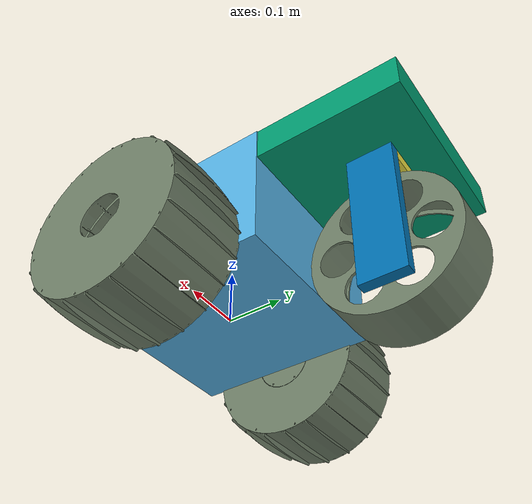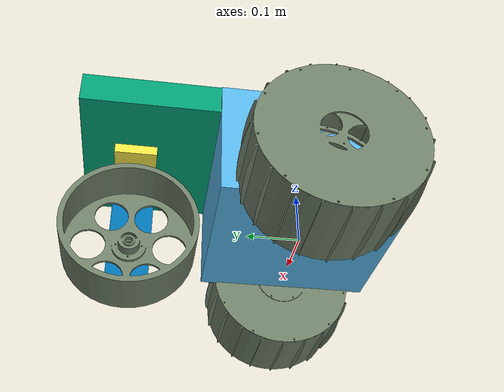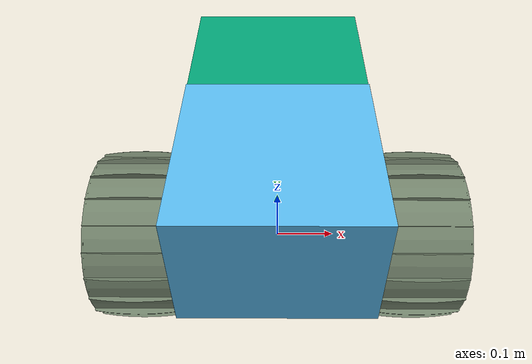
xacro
<?xml version="1.0"?>
<robot name="three_wheels_rover" xmlns:xacro="http://www.ros.org/wiki/xacro">
  <xacro:property name="PI" value="3.1415926535897931"/>
  <xacro:property name="body_mass" value="20"/>
  <!--xacro:property name="front_wheel_width" value="0.04"/-->
  <!--xacro:property name="front_wheel_diameter" value="0.14"/-->
  <!--xacro:property name="front_wheel_width" value="0.04"/-->
  <!--xacro:property name="rear_wheel_diameter" value="0.14"/-->
  <xacro:property name="front_wheel_mass" value="2.34"/>
  <xacro:property name="rear_wheel_mass" value="1.55"/>
  <xacro:property name="ns" value="three_wheels_rover" />
  <xacro:include filename="$(find three_wheels_rover)/robots_description/three_wheels_rover.gazebo.xacro" />
  <xacro:property name="mesh_path" value="$(find three_wheels_rover)/robots_description/models" />

  <link name="base_footprint"/>

  <link name="base_link">
    <visual>
      <geometry>
        <box size="0.330 0.339 0.227"/>
      </geometry>
    </visual>
    <collision>
      <geometry>
        <box size="0.330 0.339 0.227"/>
      </geometry>
    </collision>
    <inertial>
      <mass value="${body_mass}"/>
      <inertia ixx="4.610140440" ixy="0.069320469" ixz="-0.326633194" iyy="4.284394830" iyz="-0.711970939" izz="0.832276898"/>
    </inertial>
  </link>

  <joint name="base_joint" type="fixed">
    <parent link="base_footprint"/>
    <child link="base_link"/>
    <origin xyz="0 0 0.1"/>
  </joint>

  <link name="tail_main">
    <visual>
      <origin xyz="0 0 0"/>
      <geometry>
        <box size="0.326 0.251 0.0595"/>
      </geometry>
    </visual>
    <collision>
      <geometry>
        <box size="0.326 0.251 0.0595"/>
      </geometry>
    </collision>
    <inertial>
      <mass value="3"/>
      <inertia ixx="0.01663531" ixy="0" ixz="0" iyy="0.02745406" iyz="0" izz="0.04231925"/>
    </inertial>
  </link>

    <link name="tail_short">
    <visual>
      <origin xyz="0 0 0"/>
      <geometry>
        <box size="0.10 0.08 0.02"/>
      </geometry>
    </visual>
    <collision>
      <geometry>
        <box size="0.10 0.08 0.02"/>
      </geometry>
    </collision>
    <inertial>
      <mass value="0.05"/>
      <inertia ixx="0.00002833" ixy="0" ixz="0" iyy="0.00004333" iyz="0" izz="0.00006833"/>
    </inertial>
  </link>

  <link name="tail_long">
    <visual>
      <origin xyz="0 0 0"/>
      <geometry>
        <box size="0.02 0.08 0.25"/>
      </geometry>
    </visual>
    <collision>
      <geometry>
        <box size="0.02 0.08 0.15"/>
      </geometry>
    </collision>
    <inertial>
      <mass value="0.08"/>
      <inertia ixx="0.00019267" ixy="0" ixz="0" iyy="0.00015267" iyz="0" izz="0.00004533"/>
    </inertial>
  </link>

  <joint name="base_to_tail_main" type="fixed">
    <parent link="base_link"/>
    <child link="tail_main"/>
    <origin xyz="0 0.295 0.08375"/>
  </joint>

  <joint name="tail_main_to_short" type="revolute">
    <joint_properties damping="0.5" friction="0.5"/>
    <dynamics damping="0.7"/>
    <parent link="tail_main"/>
    <child link="tail_short"/>
    <axis xyz="0 0 1"/>
    <origin xyz="0 0.0232 -0.0395"/>
    <limit lower="-1.57" upper="1.57" effort="100" velocity="100"/>
  </joint>

  <joint name="tail_short_to_long" type="fixed">
    <parent link="tail_short"/>
    <child link="tail_long"/>
    <origin xyz="0.06 0 -0.115"/>
  </joint>

  <link name="front_right_wheel">
    <visual>
      <geometry>
       <mesh filename="file://${mesh_path}/meshes/front_wheel.STL"/>
      </geometry>
      <material name="grey">
        <color rgba="112 128 105 1"/>
      </material>
    </visual>
    <collision>
      <origin xyz="0 0 0" rpy="0 ${PI/2} 0"/>
      <geometry>
        <cylinder radius="0.142" length="0.144"/>
      </geometry>
    </collision>
    <inertial>
      <mass value="${front_wheel_mass}"/>
      <inertia ixx="0.018107612" ixy="0" ixz="0" iyy="0.014322778" iyz="0" izz="0.014322774"/>
    </inertial>
  </link>

  <joint name="base_to_right" type="continuous">
    <limit effort="100" velocity="100"/>
    <joint_properties damping="0.0" friction="0.0"/>
    <dynamics damping="0.7"/>
    <parent link="base_link"/>
    <child link="front_right_wheel"/>
    <axis xyz="1 0 0"/>
    <origin xyz="0.237 0 -0.098"/>
  </joint>

  <link name="front_left_wheel">
    <visual>
      <origin xyz="0 0 0" rpy="0 ${PI} 0"/>
      <geometry>
        <mesh filename="file://${mesh_path}/meshes/front_wheel.STL"/>
      </geometry>
      <material name="grey">
        <color rgba="112 128 105 1"/>
      </material>
    </visual>
    <collision>
      <origin xyz="0 0 0" rpy="0 ${PI/2} 0"/>
      <geometry>
        <cylinder radius="0.142" length="0.144"/>
      </geometry>
    </collision>
    <inertial>
      <mass value="${front_wheel_mass}"/>
      <inertia ixx="0.018107612" ixy="0" ixz="0" iyy="0.014322778" iyz="0" izz="0.014322774"/>
    </inertial>
  </link>

  <joint name="base_to_left" type="continuous">
    <limit effort="100" velocity="100"/>
    <joint_properties damping="0.0" friction="0.0"/>
    <dynamics damping="0.7"/>
    <parent link="base_link"/>
    <child link="front_left_wheel"/>
    <axis xyz="1 0 0"/>
    <origin xyz="-0.237 0 -0.098"/>
  </joint>

  <link name="rear_wheel">
    <visual>
      <origin xyz="0 0 0" rpy="0 ${PI} 0"/>
      <geometry>
        <mesh filename="file://${mesh_path}/meshes/rear_wheel.STL"/>
      </geometry>
      <material name="grey">
        <color rgba="112 128 105 1"/>
      </material>
    </visual>
    <collision>
      <origin xyz="0 0 0" rpy="0 ${PI/2} 0"/>
      <geometry>
        <cylinder radius="0.125" length="0.1"/>
      </geometry>
    </collision>
    <inertial>
      <mass value="${rear_wheel_mass}"/>
      <inertia ixx="0.018107612" ixy="0" ixz="0" iyy="0.014322778" iyz="0" izz="0.014322774"/>
    </inertial>
  </link>

  <joint name="tail_to_rear" type="continuous">
    <limit effort="100" velocity="100"/>
    <joint_properties damping="0.0" friction="0.0"/>
    <dynamics damping="0.7"/>
    <parent link="tail_long"/>
    <child link="rear_wheel"/>
    <axis xyz="1 0 0"/>
    <origin xyz="-0.06 0 -0.044249"/>
  </joint>

  <transmission name="right_wheel_trans">
    <type>transmission_interface/SimpleTransmission</type>
    <joint name="base_to_right">
      <hardwareInterface>hardware_interface/EffortJointInterface</hardwareInterface>
    </joint>
    <actuator name="right_wheel_motor">
    </actuator>
  </transmission>

  <transmission name="left_wheel_trans">
    <type>transmission_interface/SimpleTransmission</type>
    <joint name="base_to_left">
      <hardwareInterface>hardware_interface/EffortJointInterface</hardwareInterface>
    </joint>
    <actuator name="left_wheel_motor">
    </actuator>
  </transmission>

  <transmission name="tail_short_trans">
    <type>transmission_interface/SimpleTransmission</type>
    <joint name="tail_main_to_short">
      <hardwareInterface>hardware_interface/EffortJointInterface</hardwareInterface>
    </joint>
    <actuator name="tail_short_motor">
    </actuator>
  </transmission>

  <transmission name="rear_wheel_trans">
    <type>transmission_interface/SimpleTransmission</type>
    <joint name="tail_to_rear">
      <hardwareInterface>hardware_interface/EffortJointInterface</hardwareInterface>
    </joint>
    <actuator name="rear_wheel_motor">
    </actuator>
  </transmission>

</robot>
